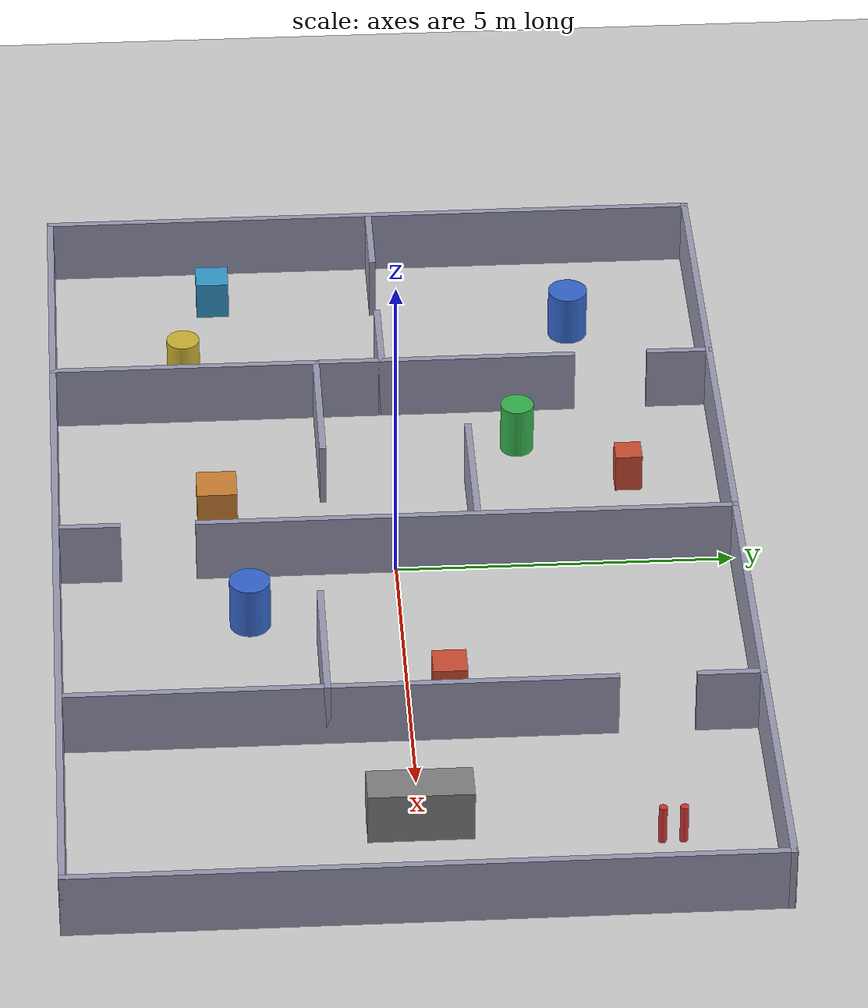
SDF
<?xml version="1.0"?>
<sdf version="1.9">
  <world name="sala_grande">
    <physics name="1ms" type="ignored"><max_step_size>0.001</max_step_size><real_time_factor>1.0</real_time_factor></physics>
    <plugin filename="gz-sim-physics-system" name="gz::sim::systems::Physics"/>
    <plugin filename="gz-sim-user-commands-system" name="gz::sim::systems::UserCommands"/>
    <plugin filename="gz-sim-scene-broadcaster-system" name="gz::sim::systems::SceneBroadcaster"/>
    <plugin filename="gz-sim-sensors-system" name="gz::sim::systems::Sensors"><render_engine>ogre2</render_engine></plugin>
    <light type="directional" name="sun"><cast_shadows>true</cast_shadows><pose>0 0 10 0 0 0</pose>
      <diffuse>0.8 0.8 0.8 1</diffuse><specular>0.2 0.2 0.2 1</specular><direction>-0.5 0.1 -0.9</direction></light>
    <model name="ground_plane"><static>true</static><link name="link">
      <collision name="collision"><geometry><plane><normal>0 0 1</normal><size>100 100</size></plane></geometry></collision>
      <visual name="visual"><geometry><plane><normal>0 0 1</normal><size>100 100</size></plane></geometry>
        <material><ambient>0.8 0.8 0.8 1</ambient><diffuse>0.8 0.8 0.8 1</diffuse></material></visual>
    </link></model>
    <model name="wall_0"><static>true</static><pose>0.0000 5.0000 0.5 0 0 0</pose>
      <link name="l">
        <collision name="c"><geometry><box><size>16.1000 0.1000 1.0</size></box></geometry></collision>
        <visual name="v"><geometry><box><size>16.1000 0.1000 1.0</size></box></geometry>
          <material><ambient>0.6 0.6 0.7 1</ambient><diffuse>0.6 0.6 0.7 1</diffuse></material></visual>
      </link></model>
    <model name="wall_1"><static>true</static><pose>0.0000 -5.0000 0.5 0 0 0</pose>
      <link name="l">
        <collision name="c"><geometry><box><size>16.1000 0.1000 1.0</size></box></geometry></collision>
        <visual name="v"><geometry><box><size>16.1000 0.1000 1.0</size></box></geometry>
          <material><ambient>0.6 0.6 0.7 1</ambient><diffuse>0.6 0.6 0.7 1</diffuse></material></visual>
      </link></model>
    <model name="wall_2"><static>true</static><pose>-8.0000 0.0000 0.5 0 0 0</pose>
      <link name="l">
        <collision name="c"><geometry><box><size>0.1000 10.1000 1.0</size></box></geometry></collision>
        <visual name="v"><geometry><box><size>0.1000 10.1000 1.0</size></box></geometry>
          <material><ambient>0.6 0.6 0.7 1</ambient><diffuse>0.6 0.6 0.7 1</diffuse></material></visual>
      </link></model>
    <model name="wall_3"><static>true</static><pose>8.0000 0.0000 0.5 0 0 0</pose>
      <link name="l">
        <collision name="c"><geometry><box><size>0.1000 10.1000 1.0</size></box></geometry></collision>
        <visual name="v"><geometry><box><size>0.1000 10.1000 1.0</size></box></geometry>
          <material><ambient>0.6 0.6 0.7 1</ambient><diffuse>0.6 0.6 0.7 1</diffuse></material></visual>
      </link></model>
    <model name="wall_4"><static>true</static><pose>4.0000 -1.0500 0.5 0 0 0</pose>
      <link name="l">
        <collision name="c"><geometry><box><size>0.1000 8.0000 1.0</size></box></geometry></collision>
        <visual name="v"><geometry><box><size>0.1000 8.0000 1.0</size></box></geometry>
          <material><ambient>0.6 0.6 0.7 1</ambient><diffuse>0.6 0.6 0.7 1</diffuse></material></visual>
      </link></model>
    <model name="wall_5"><static>true</static><pose>4.0000 4.5500 0.5 0 0 0</pose>
      <link name="l">
        <collision name="c"><geometry><box><size>0.1000 1.0000 1.0</size></box></geometry></collision>
        <visual name="v"><geometry><box><size>0.1000 1.0000 1.0</size></box></geometry>
          <material><ambient>0.6 0.6 0.7 1</ambient><diffuse>0.6 0.6 0.7 1</diffuse></material></visual>
      </link></model>
    <model name="wall_6"><static>true</static><pose>0.0000 -4.5500 0.5 0 0 0</pose>
      <link name="l">
        <collision name="c"><geometry><box><size>0.1000 1.0000 1.0</size></box></geometry></collision>
        <visual name="v"><geometry><box><size>0.1000 1.0000 1.0</size></box></geometry>
          <material><ambient>0.6 0.6 0.7 1</ambient><diffuse>0.6 0.6 0.7 1</diffuse></material></visual>
      </link></model>
    <model name="wall_7"><static>true</static><pose>0.0000 1.0500 0.5 0 0 0</pose>
      <link name="l">
        <collision name="c"><geometry><box><size>0.1000 8.0000 1.0</size></box></geometry></collision>
        <visual name="v"><geometry><box><size>0.1000 8.0000 1.0</size></box></geometry>
          <material><ambient>0.6 0.6 0.7 1</ambient><diffuse>0.6 0.6 0.7 1</diffuse></material></visual>
      </link></model>
    <model name="wall_8"><static>true</static><pose>-4.0000 -1.0500 0.5 0 0 0</pose>
      <link name="l">
        <collision name="c"><geometry><box><size>0.1000 8.0000 1.0</size></box></geometry></collision>
        <visual name="v"><geometry><box><size>0.1000 8.0000 1.0</size></box></geometry>
          <material><ambient>0.6 0.6 0.7 1</ambient><diffuse>0.6 0.6 0.7 1</diffuse></material></visual>
      </link></model>
    <model name="wall_9"><static>true</static><pose>-4.0000 4.5500 0.5 0 0 0</pose>
      <link name="l">
        <collision name="c"><geometry><box><size>0.1000 1.0000 1.0</size></box></geometry></collision>
        <visual name="v"><geometry><box><size>0.1000 1.0000 1.0</size></box></geometry>
          <material><ambient>0.6 0.6 0.7 1</ambient><diffuse>0.6 0.6 0.7 1</diffuse></material></visual>
      </link></model>
    <model name="wall_10"><static>true</static><pose>-1.1000 1.2000 0.5 0 0 0</pose>
      <link name="l">
        <collision name="c"><geometry><box><size>2.3000 0.1000 1.0</size></box></geometry></collision>
        <visual name="v"><geometry><box><size>2.3000 0.1000 1.0</size></box></geometry>
          <material><ambient>0.6 0.6 0.7 1</ambient><diffuse>0.6 0.6 0.7 1</diffuse></material></visual>
      </link></model>
    <model name="wall_11"><static>true</static><pose>-2.9000 -1.0000 0.5 0 0 0</pose>
      <link name="l">
        <collision name="c"><geometry><box><size>2.3000 0.1000 1.0</size></box></geometry></collision>
        <visual name="v"><geometry><box><size>2.3000 0.1000 1.0</size></box></geometry>
          <material><ambient>0.6 0.6 0.7 1</ambient><diffuse>0.6 0.6 0.7 1</diffuse></material></visual>
      </link></model>
    <model name="wall_12"><static>true</static><pose>2.9000 -1.2000 0.5 0 0 0</pose>
      <link name="l">
        <collision name="c"><geometry><box><size>2.3000 0.1000 1.0</size></box></geometry></collision>
        <visual name="v"><geometry><box><size>2.3000 0.1000 1.0</size></box></geometry>
          <material><ambient>0.6 0.6 0.7 1</ambient><diffuse>0.6 0.6 0.7 1</diffuse></material></visual>
      </link></model>
    <model name="wall_13"><static>true</static><pose>-7.3500 0.0000 0.5 0 0 0</pose>
      <link name="l">
        <collision name="c"><geometry><box><size>1.4000 0.1000 1.0</size></box></geometry></collision>
        <visual name="v"><geometry><box><size>1.4000 0.1000 1.0</size></box></geometry>
          <material><ambient>0.6 0.6 0.7 1</ambient><diffuse>0.6 0.6 0.7 1</diffuse></material></visual>
      </link></model>
    <model name="wall_14"><static>true</static><pose>-4.6500 0.0000 0.5 0 0 0</pose>
      <link name="l">
        <collision name="c"><geometry><box><size>1.4000 0.1000 1.0</size></box></geometry></collision>
        <visual name="v"><geometry><box><size>1.4000 0.1000 1.0</size></box></geometry>
          <material><ambient>0.6 0.6 0.7 1</ambient><diffuse>0.6 0.6 0.7 1</diffuse></material></visual>
      </link></model>
    <model name="obst_0"><static>true</static><pose>3.0 0.6 0.3 0 0 0</pose>
      <link name="l">
        <collision name="c"><geometry><box><size>0.5 0.5 0.6</size></box></geometry></collision>
        <visual name="v"><geometry><box><size>0.5 0.5 0.6</size></box></geometry>
          <material><ambient>0.8 0.3 0.2 1</ambient><diffuse>0.8 0.3 0.2 1</diffuse></material></visual>
      </link></model>
    <model name="obst_1"><static>true</static><pose>1.2 -2.2 0.4 0 0 0</pose>
      <link name="l">
        <collision name="c"><geometry><cylinder><radius>0.3</radius><length>0.8</length></cylinder></geometry></collision>
        <visual name="v"><geometry><cylinder><radius>0.3</radius><length>0.8</length></cylinder></geometry>
          <material><ambient>0.2 0.4 0.8 1</ambient><diffuse>0.2 0.4 0.8 1</diffuse></material></visual>
      </link></model>
    <model name="obst_2"><static>true</static><pose>-1.5 -2.6 0.3 0 0 0</pose>
      <link name="l">
        <collision name="c"><geometry><box><size>0.6 0.6 0.6</size></box></geometry></collision>
        <visual name="v"><geometry><box><size>0.6 0.6 0.6</size></box></geometry>
          <material><ambient>0.8 0.5 0.2 1</ambient><diffuse>0.8 0.5 0.2 1</diffuse></material></visual>
      </link></model>
    <model name="obst_3"><static>true</static><pose>-3.0 2.0 0.4 0 0 0</pose>
      <link name="l">
        <collision name="c"><geometry><cylinder><radius>0.25</radius><length>0.8</length></cylinder></geometry></collision>
        <visual name="v"><geometry><cylinder><radius>0.25</radius><length>0.8</length></cylinder></geometry>
          <material><ambient>0.2 0.7 0.3 1</ambient><diffuse>0.2 0.7 0.3 1</diffuse></material></visual>
      </link></model>
    <model name="obst_4"><static>true</static><pose>-2.0 3.6 0.3 0 0 0</pose>
      <link name="l">
        <collision name="c"><geometry><box><size>0.4 0.4 0.6</size></box></geometry></collision>
        <visual name="v"><geometry><box><size>0.4 0.4 0.6</size></box></geometry>
          <material><ambient>0.8 0.3 0.2 1</ambient><diffuse>0.8 0.3 0.2 1</diffuse></material></visual>
      </link></model>
    <model name="obst_5"><static>true</static><pose>-6.0 3.0 0.4 0 0 0</pose>
      <link name="l">
        <collision name="c"><geometry><cylinder><radius>0.3</radius><length>0.8</length></cylinder></geometry></collision>
        <visual name="v"><geometry><cylinder><radius>0.3</radius><length>0.8</length></cylinder></geometry>
          <material><ambient>0.2 0.4 0.8 1</ambient><diffuse>0.2 0.4 0.8 1</diffuse></material></visual>
      </link></model>
    <model name="obst_6"><static>true</static><pose>-7.0 -2.5 0.3 0 0 0</pose>
      <link name="l">
        <collision name="c"><geometry><box><size>0.5 0.5 0.6</size></box></geometry></collision>
        <visual name="v"><geometry><box><size>0.5 0.5 0.6</size></box></geometry>
          <material><ambient>0.2 0.6 0.8 1</ambient><diffuse>0.2 0.6 0.8 1</diffuse></material></visual>
      </link></model>
    <model name="obst_7"><static>true</static><pose>-5.0 -3.0 0.4 0 0 0</pose>
      <link name="l">
        <collision name="c"><geometry><cylinder><radius>0.25</radius><length>0.8</length></cylinder></geometry></collision>
        <visual name="v"><geometry><cylinder><radius>0.25</radius><length>0.8</length></cylinder></geometry>
          <material><ambient>0.8 0.7 0.2 1</ambient><diffuse>0.8 0.7 0.2 1</diffuse></material></visual>
      </link></model>
    <model name="obst_8"><static>true</static><pose>6.0 0.0 0.4 0 0 0</pose>
      <link name="l">
        <collision name="c"><geometry><box><size>0.6 1.5 0.8</size></box></geometry></collision>
        <visual name="v"><geometry><box><size>0.6 1.5 0.8</size></box></geometry>
          <material><ambient>0.5 0.5 0.5 1</ambient><diffuse>0.5 0.5 0.5 1</diffuse></material></visual>
      </link></model>
    <model name="pessoa">
      <pose>6.5 3.5 0 0 0 0</pose>
      <link name="pernas">
        <gravity>false</gravity>
        <inertial>
          <mass>10</mass>
          <inertia><ixx>0.5</ixx><iyy>0.5</iyy><izz>0.5</izz></inertia>
        </inertial>
        <collision name="perna_esq">
          <pose>0 0.15 0.31 0 0 0</pose>
          <geometry><cylinder><radius>0.06</radius><length>0.6</length></cylinder></geometry>
        </collision>
        <visual name="perna_esq_v">
          <pose>0 0.15 0.31 0 0 0</pose>
          <geometry><cylinder><radius>0.06</radius><length>0.6</length></cylinder></geometry>
          <material><ambient>0.8 0.2 0.2 1</ambient><diffuse>0.8 0.2 0.2 1</diffuse></material>
        </visual>
        <collision name="perna_dir">
          <pose>0 -0.15 0.31 0 0 0</pose>
          <geometry><cylinder><radius>0.06</radius><length>0.6</length></cylinder></geometry>
        </collision>
        <visual name="perna_dir_v">
          <pose>0 -0.15 0.31 0 0 0</pose>
          <geometry><cylinder><radius>0.06</radius><length>0.6</length></cylinder></geometry>
          <material><ambient>0.8 0.2 0.2 1</ambient><diffuse>0.8 0.2 0.2 1</diffuse></material>
        </visual>
      </link>
      <plugin filename="gz-sim-velocity-control-system"
              name="gz::sim::systems::VelocityControl">
        <topic>/model/pessoa/cmd_vel</topic>
      </plugin>
    </model>
  </world>
</sdf>
